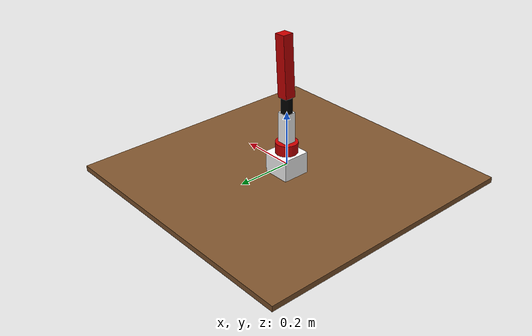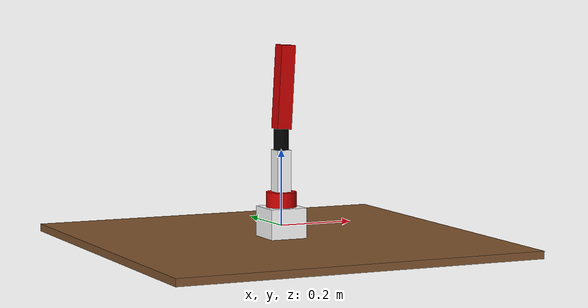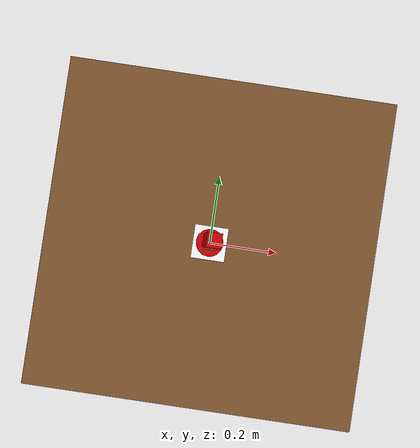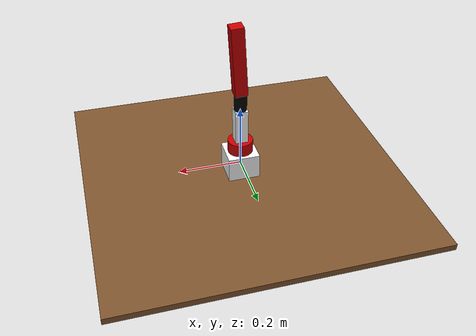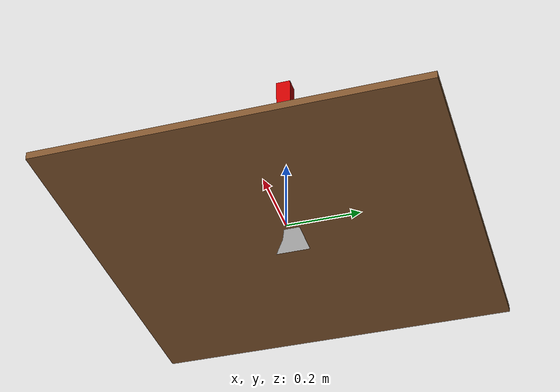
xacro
<?xml version="1.0"?>
<robot name="three_dof_arm" xmlns:xacro="http://ros.org/wiki/xacro">

  <!-- Include materials -->
  <material name="Black">
    <color rgba="0.0 0.0 0.0 1.0"/>
  </material>
  <material name="Red">
    <color rgba="0.8 0.0 0.0 1.0"/>
  </material>
  <material name="White">
    <color rgba="1.0 1.0 1.0 1.0"/>
  </material>

  <xacro:property name="deg_to_rad" value="0.01745329251994329577"/>

  <!-- Constants -->
  <xacro:property name="M_SCALE" value="0.001 0.001 0.001"/>
  <xacro:property name="M_PI" value="3.14159"/>

  <!-- Shoulder pan link properties -->
  <xacro:property name="shoulder_pan_width" value="0.04" />
  <xacro:property name="shoulder_pan_len" value="0.08" />

  <!-- Shoulder pitch link properties -->
  <xacro:property name="shoulder_pitch_len" value="0.14" />
  <xacro:property name="shoulder_pitch_width" value="0.04" />
  <xacro:property name="shoulder_pitch_height" value="0.04" />

  <!-- Elbow roll link properties -->
  <xacro:property name="elbow_roll_width" value="0.02" />
  <xacro:property name="elbow_roll_len" value="0.06" />

  <!-- Elbow pitch link properties -->
  <xacro:property name="elbow_pitch_len" value="0.22" />
  <xacro:property name="elbow_pitch_width" value="0.04" />
  <xacro:property name="elbow_pitch_height" value="0.04" />

<xacro:macro name="inertial_matrix" params="mass">
      <inertial>
      	<mass value="${mass}" />
        <inertia ixx="1.0" ixy="0.0" ixz="0.0" iyy="0.5" iyz="0.0" izz="1.0" />
      </inertial>
   </xacro:macro>

   <xacro:macro name="transmission_block" params="joint_name">
	  <transmission name="tran1">
	    <type>transmission_interface/SimpleTransmission</type>
	    <joint name="${joint_name}">
	      <hardwareInterface>hardware_interface/PositionJointInterface</hardwareInterface>
	    </joint>
	    <actuator name="motor1">
	      <hardwareInterface>hardware_interface/PositionJointInterface</hardwareInterface>
	      <mechanicalReduction>1</mechanicalReduction>
	    </actuator>
	  </transmission>
   </xacro:macro>

  <!-- Define bottom link -->
  <link name="bottom_link">
    <visual>
      <origin xyz=" 0 0 -0.04"  rpy="0 0 0"/>
      <geometry>
        <box size="1 1 0.02" />
      </geometry>
      <material name="Brown" />
    </visual>
    <collision>
      <origin xyz=" 0 0 -0.04"  rpy="0 0 0"/>
      <geometry>
        <box size="1 1 0.02" />
      </geometry>
    </collision>
  </link>

  <!-- Define base link -->
  <link name="base_link">
    <visual>
      <origin xyz="0 0 0" rpy="${M_PI/2} 0 0" /> <!-- rotate PI/2 -->
      <geometry>
        <box size="0.1 0.1 0.1" />
      </geometry>
      <material name="White" />
    </visual>
    <collision>
      <origin xyz="0 0 0" rpy="${M_PI/2} 0 0" /> <!-- rotate PI/2 -->
      <geometry>
        <box size="0.1 0.1 0.1" />
      </geometry>
    </collision>
    <inertial>
      <mass value="1"/>
      <inertia ixx="1.0" ixy="0.0" ixz="0.0" iyy="0.5" iyz="0.0" izz="1.0" />
    </inertial>
  </link>

  <!-- Joint definitions -->
  <joint name="bottom_joint" type="fixed">
    <origin xyz="0 0 0" rpy="0 0 0" />
    <parent link="base_link"/>
    <child link="bottom_link"/>
  </joint>

  <joint name="shoulder_pan_joint" type="revolute">
    <parent link="base_link"/>
    <child link="shoulder_pan_link"/>
    <origin xyz="0 0 0.05" rpy="0 ${M_PI/2} ${M_PI*0}" />
    <axis xyz="-1 0 0" />
    <limit effort="300" velocity="1" lower="-2.61799387799" upper="1.98394848567"/>
    <dynamics damping="50" friction="1"/>
  </joint>

  <joint name="shoulder_pitch_joint" type="revolute">
    <parent link="shoulder_pan_link"/>
    <child link="shoulder_pitch_link"/>
    <origin xyz="-0.041 0.0021 0.0" rpy="-${M_PI/2} 0 ${M_PI/2}" />
    <axis xyz="1 0 0" />
    <limit effort="300" velocity="1" lower="-1.19962513147" upper="1.89994105047" />
    <dynamics damping="50" friction="1"/>
  </joint>

  <joint name="elbow_roll_joint" type="fixed">
    <parent link="shoulder_pitch_link"/>
    <child link="elbow_roll_link"/>
    <origin xyz="-0.002 0 0.1206" rpy="${M_PI} ${M_PI/2} 0" />
    <axis xyz="-1 0 0" />
    <!-- Remove limit, dynamics, and transmission for fixed joint -->
  </joint>

  <joint name="elbow_pitch_joint" type="revolute">
    <parent link="elbow_roll_link"/>
    <child link="elbow_pitch_link"/>
    <origin xyz="-0.035 0 0.0" rpy="0.055 ${M_PI/2} 0" />
    <axis xyz="1 0 0" />
    <limit effort="300" velocity="1" lower="-1.5953400194" upper="1.93281579274" />
    <dynamics damping="50" friction="1"/>
  </joint>

  <!-- Links and visuals for the shoulder pan and pitch links -->

  <!-- SHOULDER PAN LINK -->
  <link name="shoulder_pan_link">
    <visual>
      <origin xyz="0 0 0" rpy="0 ${M_PI/2} 0" />
      <geometry>
        <cylinder radius="${shoulder_pan_width}" length="${shoulder_pan_len}"/>
      </geometry>
      <material name="Red" />
    </visual>
    <collision>
      <origin xyz="0 0 0" rpy="0 ${M_PI/2} 0" />
      <geometry>
        <cylinder radius="${shoulder_pan_width}" length="${shoulder_pan_len}"/>
      </geometry>
    </collision>
    <inertial>
      <mass value="1"/>
      <inertia ixx="1.0" ixy="0.0" ixz="0.0" iyy="0.5" iyz="0.0" izz="1.0" />
    </inertial>
  </link>

  <!-- SHOULDER PITCH LINK -->
  <link name="shoulder_pitch_link">
    <visual>
      <origin xyz="-0.002 0 0.04" rpy="0 ${M_PI/2} 0" />
      <geometry>
        <box size="${shoulder_pitch_len} ${shoulder_pitch_width} ${shoulder_pitch_height}" />
      </geometry>
      <material name="White" />
    </visual>
    <collision>
      <origin xyz="-0.002 0 0.04" rpy="0 ${M_PI/2} 0" />
      <geometry>
        <box size="${shoulder_pitch_len} ${shoulder_pitch_width} ${shoulder_pitch_height}" />
      </geometry>
    </collision>
    <inertial>
      <mass value="1"/>
      <inertia ixx="1.0" ixy="0.0" ixz="0.0" iyy="0.5" iyz="0.0" izz="1.0" />
    </inertial>
  </link>

  <!-- ELBOW ROLL LINK -->
  <link name="elbow_roll_link" >
    <visual>
      <origin xyz="-0.015 0.0 -0.0" rpy="0 ${M_PI/2} 0" />
      <geometry>
           <cylinder radius="${elbow_roll_width}" length="${elbow_roll_len}"/>
      </geometry>
      <material name="Black" />
    </visual>
    <collision>
      <origin xyz="-0.015 0.0 -0.0" rpy="0 ${M_PI/2} 0" />
      <geometry>
            <cylinder radius="${elbow_roll_width}" length="${elbow_roll_len}"/>
      </geometry>
    </collision>
	      <xacro:inertial_matrix mass="1"/>
  </link>

  <!-- ELBOW PITCH LINK -->
  <link name="elbow_pitch_link" >

    <visual>
      <origin xyz="0 0 -0.12" rpy="0 ${M_PI/2} 0" />
      <geometry>

       <box size="${elbow_pitch_len} ${elbow_pitch_width} ${elbow_pitch_height}" />

      </geometry>
      <material name="Red" />
    </visual>

    <collision>
      <origin xyz="0 0 -0.12" rpy="0 ${M_PI/2} 0" />
      <geometry>
       <box size="${elbow_pitch_len} ${elbow_pitch_width} ${elbow_pitch_height}" />
      </geometry>
    </collision>
	      <xacro:inertial_matrix mass="1"/>
  </link>

  <!-- Transmissions for ROS Control -->
  <transmission name="tran1">
    <type>transmission_interface/SimpleTransmission</type>
    <joint name="shoulder_pan_joint">
      <hardwareInterface>hardware_interface/PositionJointInterface</hardwareInterface>
    </joint>
    <actuator name="motor1">
      <hardwareInterface>hardware_interface/PositionJointInterface</hardwareInterface>
      <mechanicalReduction>1</mechanicalReduction>
    </actuator>
  </transmission>

  <transmission name="tran2">
    <type>transmission_interface/SimpleTransmission</type>
    <joint name="shoulder_pitch_joint">
      <hardwareInterface>hardware_interface/PositionJointInterface</hardwareInterface>
    </joint>
    <actuator name="motor2">
      <hardwareInterface>hardware_interface/PositionJointInterface</hardwareInterface>
      <mechanicalReduction>1</mechanicalReduction>
    </actuator>
  </transmission>

  <transmission name="tran4">
    <type>transmission_interface/SimpleTransmission</type>
    <joint name="elbow_pitch_joint">
      <hardwareInterface>hardware_interface/PositionJointInterface</hardwareInterface>
    </joint>
    <actuator name="motor4">
      <hardwareInterface>hardware_interface/PositionJointInterface</hardwareInterface>
      <mechanicalReduction>1</mechanicalReduction>
    </actuator>
  </transmission>

  <!-- Include gazebo plugin for ROS Control -->
  <gazebo>
    <plugin name="gazebo_ros_control" filename="libgazebo_ros_control.so">
      <robotNamespace>/three_dof_arm</robotNamespace>
    </plugin>
  </gazebo>

</robot>
